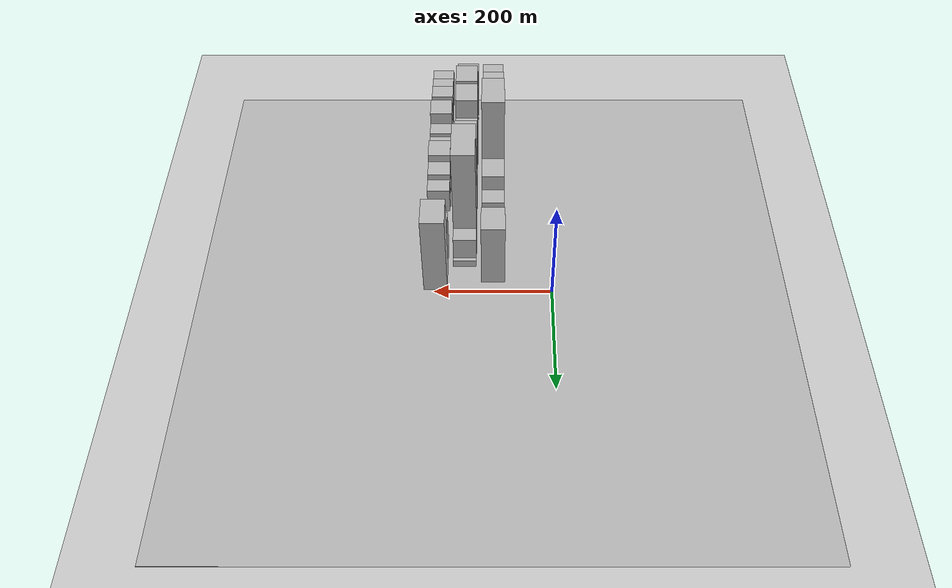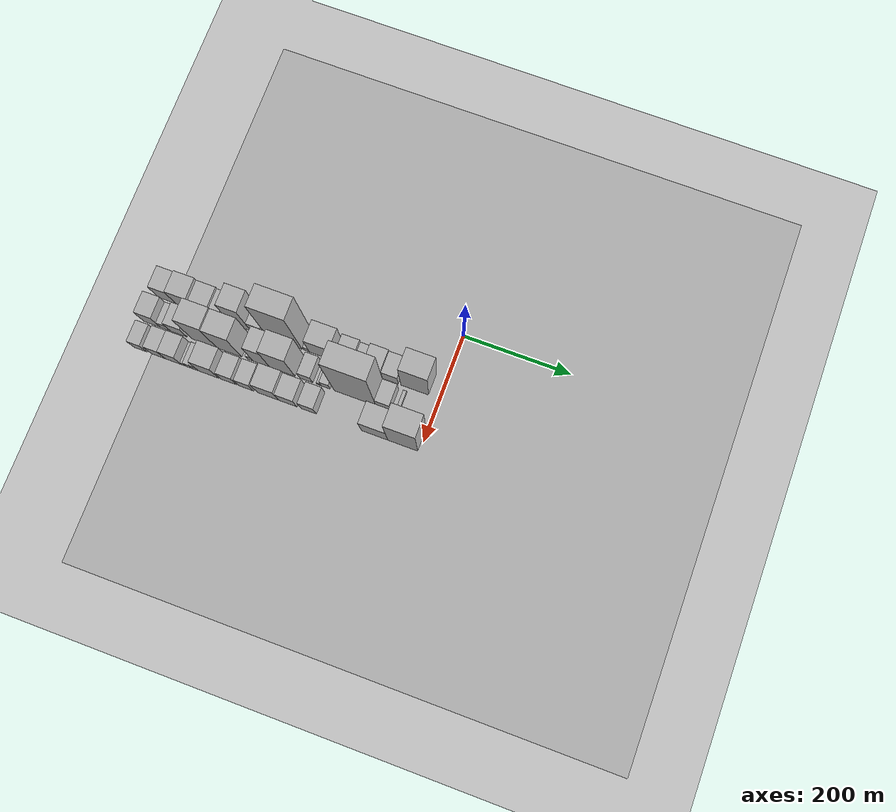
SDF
<sdf version="1.6">
 <world name="default">
  <include><name>ground_plane_1</name><uri>model://HANNAS_ground_plane</uri></include>
  <include>
   <name>ground_plane_2</name>
   <uri>model://HANNAS_ground_plane</uri>
   <pose>100 0 0  0 0 0</pose>
  </include>
  <model name="building_1">
   <static>1</static>
   <pose>100.0000 -513.3441 0 0.000000 0.000000 0.000000</pose>
   <link name="link">
    <pose>0 0 33.00 0 0 0</pose>
    <collision name="collision"><geometry><box><size>40.0000 33.3119 66.0000</size></box></geometry></collision>
    <visual name="visual">
     <cast_shadows>0</cast_shadows>
     <geometry><box><size>40.0000 33.3119 66.0000</size></box></geometry>
     <material>
      <script>
       <uri>model://HANNAS_wall/materials/scripts</uri>
       <uri>model://HANNAS_wall/materials/textures</uri>
       <name>vrc/HANNAS_wall</name>
      </script>
     </material>
    </visual>
   </link>
  </model>
  <model name="building_2">
   <static>1</static>
   <pose>100.0000 -477.1812 0 0.000000 0.000000 0.000000</pose>
   <link name="link">
    <pose>0 0 37.50 0 0 0</pose>
    <collision name="collision"><geometry><box><size>40.0000 39.0138 75.0000</size></box></geometry></collision>
    <visual name="visual">
     <cast_shadows>0</cast_shadows>
     <geometry><box><size>40.0000 39.0138 75.0000</size></box></geometry>
     <material>
      <script>
       <uri>model://HANNAS_wall/materials/scripts</uri>
       <uri>model://HANNAS_wall/materials/textures</uri>
       <name>vrc/HANNAS_wall</name>
      </script>
     </material>
    </visual>
   </link>
  </model>
  <model name="building_3">
   <static>1</static>
   <pose>100.0000 -439.6910 0 0.000000 0.000000 0.000000</pose>
   <link name="link">
    <pose>0 0 31.50 0 0 0</pose>
    <collision name="collision"><geometry><box><size>40.0000 35.9666 63.0000</size></box></geometry></collision>
    <visual name="visual">
     <cast_shadows>0</cast_shadows>
     <geometry><box><size>40.0000 35.9666 63.0000</size></box></geometry>
     <material>
      <script>
       <uri>model://HANNAS_wall/materials/scripts</uri>
       <uri>model://HANNAS_wall/materials/textures</uri>
       <name>vrc/HANNAS_wall</name>
      </script>
     </material>
    </visual>
   </link>
  </model>
  <model name="building_4">
   <static>1</static>
   <pose>100.0000 -406.5747 0 0.000000 0.000000 0.000000</pose>
   <link name="link">
    <pose>0 0 27.00 0 0 0</pose>
    <collision name="collision"><geometry><box><size>40.0000 30.2659 54.0000</size></box></geometry></collision>
    <visual name="visual">
     <cast_shadows>0</cast_shadows>
     <geometry><box><size>40.0000 30.2659 54.0000</size></box></geometry>
     <material>
      <script>
       <uri>model://HANNAS_wall/materials/scripts</uri>
       <uri>model://HANNAS_wall/materials/textures</uri>
       <name>vrc/HANNAS_wall</name>
      </script>
     </material>
    </visual>
   </link>
  </model>
  <model name="building_5">
   <static>1</static>
   <pose>100.0000 -372.5879 0 0.000000 0.000000 0.000000</pose>
   <link name="link">
    <pose>0 0 61.50 0 0 0</pose>
    <collision name="collision"><geometry><box><size>40.0000 37.7079 123.0000</size></box></geometry></collision>
    <visual name="visual">
     <cast_shadows>0</cast_shadows>
     <geometry><box><size>40.0000 37.7079 123.0000</size></box></geometry>
     <material>
      <script>
       <uri>model://HANNAS_wall/materials/scripts</uri>
       <uri>model://HANNAS_wall/materials/textures</uri>
       <name>vrc/HANNAS_wall</name>
      </script>
     </material>
    </visual>
   </link>
  </model>
  <model name="building_6">
   <static>1</static>
   <pose>100.0000 -340.1390 0 0.000000 0.000000 0.000000</pose>
   <link name="link">
    <pose>0 0 25.50 0 0 0</pose>
    <collision name="collision"><geometry><box><size>40.0000 27.1898 51.0000</size></box></geometry></collision>
    <visual name="visual">
     <cast_shadows>0</cast_shadows>
     <geometry><box><size>40.0000 27.1898 51.0000</size></box></geometry>
     <material>
      <script>
       <uri>model://HANNAS_wall/materials/scripts</uri>
       <uri>model://HANNAS_wall/materials/textures</uri>
       <name>vrc/HANNAS_wall</name>
      </script>
     </material>
    </visual>
   </link>
  </model>
  <model name="building_7">
   <static>1</static>
   <pose>100.0000 -288.8997 0 0.000000 0.000000 0.000000</pose>
   <link name="link">
    <pose>0 0 100.50 0 0 0</pose>
    <collision name="collision"><geometry><box><size>40.0000 65.2887 201.0000</size></box></geometry></collision>
    <visual name="visual">
     <cast_shadows>0</cast_shadows>
     <geometry><box><size>40.0000 65.2887 201.0000</size></box></geometry>
     <material>
      <script>
       <uri>model://HANNAS_wall/materials/scripts</uri>
       <uri>model://HANNAS_wall/materials/textures</uri>
       <name>vrc/HANNAS_wall</name>
      </script>
     </material>
    </visual>
   </link>
  </model>
  <model name="building_8">
   <static>1</static>
   <pose>100.0000 -248.1924 0 0.000000 0.000000 0.000000</pose>
   <link name="link">
    <pose>0 0 10.50 0 0 0</pose>
    <collision name="collision"><geometry><box><size>40.0000 10.1259 21.0000</size></box></geometry></collision>
    <visual name="visual">
     <cast_shadows>0</cast_shadows>
     <geometry><box><size>40.0000 10.1259 21.0000</size></box></geometry>
     <material>
      <script>
       <uri>model://HANNAS_wall/materials/scripts</uri>
       <uri>model://HANNAS_wall/materials/textures</uri>
       <name>vrc/HANNAS_wall</name>
      </script>
     </material>
    </visual>
   </link>
  </model>
  <model name="building_9">
   <static>1</static>
   <pose>100.0000 -220.3343 0 0.000000 0.000000 0.000000</pose>
   <link name="link">
    <pose>0 0 40.50 0 0 0</pose>
    <collision name="collision"><geometry><box><size>40.0000 45.5904 81.0000</size></box></geometry></collision>
    <visual name="visual">
     <cast_shadows>0</cast_shadows>
     <geometry><box><size>40.0000 45.5904 81.0000</size></box></geometry>
     <material>
      <script>
       <uri>model://HANNAS_wall/materials/scripts</uri>
       <uri>model://HANNAS_wall/materials/textures</uri>
       <name>vrc/HANNAS_wall</name>
      </script>
     </material>
    </visual>
   </link>
  </model>
  <model name="building_10">
   <static>1</static>
   <pose>100.0000 -175.4471 0 0.000000 0.000000 0.000000</pose>
   <link name="link">
    <pose>0 0 27.00 0 0 0</pose>
    <collision name="collision"><geometry><box><size>40.0000 32.1840 54.0000</size></box></geometry></collision>
    <visual name="visual">
     <cast_shadows>0</cast_shadows>
     <geometry><box><size>40.0000 32.1840 54.0000</size></box></geometry>
     <material>
      <script>
       <uri>model://HANNAS_wall/materials/scripts</uri>
       <uri>model://HANNAS_wall/materials/textures</uri>
       <name>vrc/HANNAS_wall</name>
      </script>
     </material>
    </visual>
   </link>
  </model>
  <model name="building_11">
   <static>1</static>
   <pose>100.0000 -149.4975 0 0.000000 0.000000 0.000000</pose>
   <link name="link">
    <pose>0 0 19.50 0 0 0</pose>
    <collision name="collision"><geometry><box><size>40.0000 19.7152 39.0000</size></box></geometry></collision>
    <visual name="visual">
     <cast_shadows>0</cast_shadows>
     <geometry><box><size>40.0000 19.7152 39.0000</size></box></geometry>
     <material>
      <script>
       <uri>model://HANNAS_wall/materials/scripts</uri>
       <uri>model://HANNAS_wall/materials/textures</uri>
       <name>vrc/HANNAS_wall</name>
      </script>
     </material>
    </visual>
   </link>
  </model>
  <model name="building_12">
   <static>1</static>
   <pose>100.0000 -122.9814 0 0.000000 0.000000 0.000000</pose>
   <link name="link">
    <pose>0 0 30.00 0 0 0</pose>
    <collision name="collision"><geometry><box><size>40.0000 33.3170 60.0000</size></box></geometry></collision>
    <visual name="visual">
     <cast_shadows>0</cast_shadows>
     <geometry><box><size>40.0000 33.3170 60.0000</size></box></geometry>
     <material>
      <script>
       <uri>model://HANNAS_wall/materials/scripts</uri>
       <uri>model://HANNAS_wall/materials/textures</uri>
       <name>vrc/HANNAS_wall</name>
      </script>
     </material>
    </visual>
   </link>
  </model>
  <model name="building_13">
   <static>1</static>
   <pose>100.0000 -91.6072 0 0.000000 0.000000 0.000000</pose>
   <link name="link">
    <pose>0 0 25.50 0 0 0</pose>
    <collision name="collision"><geometry><box><size>40.0000 29.4314 51.0000</size></box></geometry></collision>
    <visual name="visual">
     <cast_shadows>0</cast_shadows>
     <geometry><box><size>40.0000 29.4314 51.0000</size></box></geometry>
     <material>
      <script>
       <uri>model://HANNAS_wall/materials/scripts</uri>
       <uri>model://HANNAS_wall/materials/textures</uri>
       <name>vrc/HANNAS_wall</name>
      </script>
     </material>
    </visual>
   </link>
  </model>
  <model name="building_14">
   <static>1</static>
   <pose>100.0000 -46.2894 0 0.000000 0.000000 0.000000</pose>
   <link name="link">
    <pose>0 0 66.00 0 0 0</pose>
    <collision name="collision"><geometry><box><size>40.0000 51.2043 132.0000</size></box></geometry></collision>
    <visual name="visual">
     <cast_shadows>0</cast_shadows>
     <geometry><box><size>40.0000 51.2043 132.0000</size></box></geometry>
     <material>
      <script>
       <uri>model://HANNAS_wall/materials/scripts</uri>
       <uri>model://HANNAS_wall/materials/textures</uri>
       <name>vrc/HANNAS_wall</name>
      </script>
     </material>
    </visual>
   </link>
  </model>
  <model name="building_31">
   <static>1</static>
   <pose>149.0000 -520.1009 0 0.000000 0.000000 0.000000</pose>
   <link name="link">
    <pose>0 0 31.50 0 0 0</pose>
    <collision name="collision"><geometry><box><size>40.0000 31.7982 63.0000</size></box></geometry></collision>
    <visual name="visual">
     <cast_shadows>0</cast_shadows>
     <geometry><box><size>40.0000 31.7982 63.0000</size></box></geometry>
     <material>
      <script>
       <uri>model://HANNAS_wall/materials/scripts</uri>
       <uri>model://HANNAS_wall/materials/textures</uri>
       <name>vrc/HANNAS_wall</name>
      </script>
     </material>
    </visual>
   </link>
  </model>
  <model name="building_32">
   <static>1</static>
   <pose>149.0000 -494.9690 0 0.000000 0.000000 0.000000</pose>
   <link name="link">
    <pose>0 0 16.50 0 0 0</pose>
    <collision name="collision"><geometry><box><size>40.0000 18.4654 33.0000</size></box></geometry></collision>
    <visual name="visual">
     <cast_shadows>0</cast_shadows>
     <geometry><box><size>40.0000 18.4654 33.0000</size></box></geometry>
     <material>
      <script>
       <uri>model://HANNAS_wall/materials/scripts</uri>
       <uri>model://HANNAS_wall/materials/textures</uri>
       <name>vrc/HANNAS_wall</name>
      </script>
     </material>
    </visual>
   </link>
  </model>
  <model name="building_33">
   <static>1</static>
   <pose>149.0000 -469.7545 0 0.000000 0.000000 0.000000</pose>
   <link name="link">
    <pose>0 0 27.00 0 0 0</pose>
    <collision name="collision"><geometry><box><size>40.0000 31.9637 54.0000</size></box></geometry></collision>
    <visual name="visual">
     <cast_shadows>0</cast_shadows>
     <geometry><box><size>40.0000 31.9637 54.0000</size></box></geometry>
     <material>
      <script>
       <uri>model://HANNAS_wall/materials/scripts</uri>
       <uri>model://HANNAS_wall/materials/textures</uri>
       <name>vrc/HANNAS_wall</name>
      </script>
     </material>
    </visual>
   </link>
  </model>
  <model name="building_34">
   <static>1</static>
   <pose>149.0000 -420.1335 0 0.000000 0.000000 0.000000</pose>
   <link name="link">
    <pose>0 0 66.00 0 0 0</pose>
    <collision name="collision"><geometry><box><size>40.0000 47.2783 132.0000</size></box></geometry></collision>
    <visual name="visual">
     <cast_shadows>0</cast_shadows>
     <geometry><box><size>40.0000 47.2783 132.0000</size></box></geometry>
     <material>
      <script>
       <uri>model://HANNAS_wall/materials/scripts</uri>
       <uri>model://HANNAS_wall/materials/textures</uri>
       <name>vrc/HANNAS_wall</name>
      </script>
     </material>
    </visual>
   </link>
  </model>
  <model name="building_35">
   <static>1</static>
   <pose>149.0000 -373.2348 0 0.000000 0.000000 0.000000</pose>
   <link name="link">
    <pose>0 0 63.00 0 0 0</pose>
    <collision name="collision"><geometry><box><size>40.0000 46.5190 126.0000</size></box></geometry></collision>
    <visual name="visual">
     <cast_shadows>0</cast_shadows>
     <geometry><box><size>40.0000 46.5190 126.0000</size></box></geometry>
     <material>
      <script>
       <uri>model://HANNAS_wall/materials/scripts</uri>
       <uri>model://HANNAS_wall/materials/textures</uri>
       <name>vrc/HANNAS_wall</name>
      </script>
     </material>
    </visual>
   </link>
  </model>
  <model name="building_36">
   <static>1</static>
   <pose>149.0000 -334.3465 0 0.000000 0.000000 0.000000</pose>
   <link name="link">
    <pose>0 0 12.00 0 0 0</pose>
    <collision name="collision"><geometry><box><size>40.0000 11.2576 24.0000</size></box></geometry></collision>
    <visual name="visual">
     <cast_shadows>0</cast_shadows>
     <geometry><box><size>40.0000 11.2576 24.0000</size></box></geometry>
     <material>
      <script>
       <uri>model://HANNAS_wall/materials/scripts</uri>
       <uri>model://HANNAS_wall/materials/textures</uri>
       <name>vrc/HANNAS_wall</name>
      </script>
     </material>
    </visual>
   </link>
  </model>
  <model name="building_37">
   <static>1</static>
   <pose>149.0000 -313.2042 0 0.000000 0.000000 0.000000</pose>
   <link name="link">
    <pose>0 0 51.00 0 0 0</pose>
    <collision name="collision"><geometry><box><size>40.0000 31.0270 102.0000</size></box></geometry></collision>
    <visual name="visual">
     <cast_shadows>0</cast_shadows>
     <geometry><box><size>40.0000 31.0270 102.0000</size></box></geometry>
     <material>
      <script>
       <uri>model://HANNAS_wall/materials/scripts</uri>
       <uri>model://HANNAS_wall/materials/textures</uri>
       <name>vrc/HANNAS_wall</name>
      </script>
     </material>
    </visual>
   </link>
  </model>
  <model name="building_38">
   <static>1</static>
   <pose>149.0000 -273.9152 0 0.000000 0.000000 0.000000</pose>
   <link name="link">
    <pose>0 0 61.50 0 0 0</pose>
    <collision name="collision"><geometry><box><size>40.0000 47.5510 123.0000</size></box></geometry></collision>
    <visual name="visual">
     <cast_shadows>0</cast_shadows>
     <geometry><box><size>40.0000 47.5510 123.0000</size></box></geometry>
     <material>
      <script>
       <uri>model://HANNAS_wall/materials/scripts</uri>
       <uri>model://HANNAS_wall/materials/textures</uri>
       <name>vrc/HANNAS_wall</name>
      </script>
     </material>
    </visual>
   </link>
  </model>
  <model name="building_39">
   <static>1</static>
   <pose>149.0000 -229.0265 0 0.000000 0.000000 0.000000</pose>
   <link name="link">
    <pose>0 0 21.00 0 0 0</pose>
    <collision name="collision"><geometry><box><size>40.0000 24.2266 42.0000</size></box></geometry></collision>
    <visual name="visual">
     <cast_shadows>0</cast_shadows>
     <geometry><box><size>40.0000 24.2266 42.0000</size></box></geometry>
     <material>
      <script>
       <uri>model://HANNAS_wall/materials/scripts</uri>
       <uri>model://HANNAS_wall/materials/textures</uri>
       <name>vrc/HANNAS_wall</name>
      </script>
     </material>
    </visual>
   </link>
  </model>
  <model name="building_40">
   <static>1</static>
   <pose>149.0000 -205.2852 0 0.000000 0.000000 0.000000</pose>
   <link name="link">
    <pose>0 0 7.50 0 0 0</pose>
    <collision name="collision"><geometry><box><size>40.0000 7.2558 15.0000</size></box></geometry></collision>
    <visual name="visual">
     <cast_shadows>0</cast_shadows>
     <geometry><box><size>40.0000 7.2558 15.0000</size></box></geometry>
     <material>
      <script>
       <uri>model://HANNAS_wall/materials/scripts</uri>
       <uri>model://HANNAS_wall/materials/textures</uri>
       <name>vrc/HANNAS_wall</name>
      </script>
     </material>
    </visual>
   </link>
  </model>
  <model name="building_41">
   <static>1</static>
   <pose>149.0000 -193.0816 0 0.000000 0.000000 0.000000</pose>
   <link name="link">
    <pose>0 0 16.50 0 0 0</pose>
    <collision name="collision"><geometry><box><size>40.0000 17.1515 33.0000</size></box></geometry></collision>
    <visual name="visual">
     <cast_shadows>0</cast_shadows>
     <geometry><box><size>40.0000 17.1515 33.0000</size></box></geometry>
     <material>
      <script>
       <uri>model://HANNAS_wall/materials/scripts</uri>
       <uri>model://HANNAS_wall/materials/textures</uri>
       <name>vrc/HANNAS_wall</name>
      </script>
     </material>
    </visual>
   </link>
  </model>
  <model name="building_42">
   <static>1</static>
   <pose>149.0000 -138.0762 0 0.000000 0.000000 0.000000</pose>
   <link name="link">
    <pose>0 0 111.00 0 0 0</pose>
    <collision name="collision"><geometry><box><size>40.0000 76.8591 222.0000</size></box></geometry></collision>
    <visual name="visual">
     <cast_shadows>0</cast_shadows>
     <geometry><box><size>40.0000 76.8591 222.0000</size></box></geometry>
     <material>
      <script>
       <uri>model://HANNAS_wall/materials/scripts</uri>
       <uri>model://HANNAS_wall/materials/textures</uri>
       <name>vrc/HANNAS_wall</name>
      </script>
     </material>
    </visual>
   </link>
  </model>
  <model name="building_43">
   <static>1</static>
   <pose>149.0000 -86.1121 0 0.000000 0.000000 0.000000</pose>
   <link name="link">
    <pose>0 0 25.50 0 0 0</pose>
    <collision name="collision"><geometry><box><size>40.0000 27.0691 51.0000</size></box></geometry></collision>
    <visual name="visual">
     <cast_shadows>0</cast_shadows>
     <geometry><box><size>40.0000 27.0691 51.0000</size></box></geometry>
     <material>
      <script>
       <uri>model://HANNAS_wall/materials/scripts</uri>
       <uri>model://HANNAS_wall/materials/textures</uri>
       <name>vrc/HANNAS_wall</name>
      </script>
     </material>
    </visual>
   </link>
  </model>
  <model name="building_44">
   <static>1</static>
   <pose>149.0000 -60.4198 0 0.000000 0.000000 0.000000</pose>
   <link name="link">
    <pose>0 0 7.50 0 0 0</pose>
    <collision name="collision"><geometry><box><size>40.0000 6.3156 15.0000</size></box></geometry></collision>
    <visual name="visual">
     <cast_shadows>0</cast_shadows>
     <geometry><box><size>40.0000 6.3156 15.0000</size></box></geometry>
     <material>
      <script>
       <uri>model://HANNAS_wall/materials/scripts</uri>
       <uri>model://HANNAS_wall/materials/textures</uri>
       <name>vrc/HANNAS_wall</name>
      </script>
     </material>
    </visual>
   </link>
  </model>
  <model name="building_59">
   <static>1</static>
   <pose>198.0000 -520.8537 0 0.000000 0.000000 0.000000</pose>
   <link name="link">
    <pose>0 0 24.00 0 0 0</pose>
    <collision name="collision"><geometry><box><size>40.0000 24.2926 48.0000</size></box></geometry></collision>
    <visual name="visual">
     <cast_shadows>0</cast_shadows>
     <geometry><box><size>40.0000 24.2926 48.0000</size></box></geometry>
     <material>
      <script>
       <uri>model://HANNAS_wall/materials/scripts</uri>
       <uri>model://HANNAS_wall/materials/textures</uri>
       <name>vrc/HANNAS_wall</name>
      </script>
     </material>
    </visual>
   </link>
  </model>
  <model name="building_60">
   <static>1</static>
   <pose>198.0000 -487.1367 0 0.000000 0.000000 0.000000</pose>
   <link name="link">
    <pose>0 0 27.00 0 0 0</pose>
    <collision name="collision"><geometry><box><size>40.0000 27.1415 54.0000</size></box></geometry></collision>
    <visual name="visual">
     <cast_shadows>0</cast_shadows>
     <geometry><box><size>40.0000 27.1415 54.0000</size></box></geometry>
     <material>
      <script>
       <uri>model://HANNAS_wall/materials/scripts</uri>
       <uri>model://HANNAS_wall/materials/textures</uri>
       <name>vrc/HANNAS_wall</name>
      </script>
     </material>
    </visual>
   </link>
  </model>
  <model name="building_61">
   <static>1</static>
   <pose>198.0000 -458.1198 0 0.000000 0.000000 0.000000</pose>
   <link name="link">
    <pose>0 0 28.50 0 0 0</pose>
    <collision name="collision"><geometry><box><size>40.0000 30.8923 57.0000</size></box></geometry></collision>
    <visual name="visual">
     <cast_shadows>0</cast_shadows>
     <geometry><box><size>40.0000 30.8923 57.0000</size></box></geometry>
     <material>
      <script>
       <uri>model://HANNAS_wall/materials/scripts</uri>
       <uri>model://HANNAS_wall/materials/textures</uri>
       <name>vrc/HANNAS_wall</name>
      </script>
     </material>
    </visual>
   </link>
  </model>
  <model name="building_62">
   <static>1</static>
   <pose>198.0000 -439.0229 0 0.000000 0.000000 0.000000</pose>
   <link name="link">
    <pose>0 0 9.00 0 0 0</pose>
    <collision name="collision"><geometry><box><size>40.0000 7.3014 18.0000</size></box></geometry></collision>
    <visual name="visual">
     <cast_shadows>0</cast_shadows>
     <geometry><box><size>40.0000 7.3014 18.0000</size></box></geometry>
     <material>
      <script>
       <uri>model://HANNAS_wall/materials/scripts</uri>
       <uri>model://HANNAS_wall/materials/textures</uri>
       <name>vrc/HANNAS_wall</name>
      </script>
     </material>
    </visual>
   </link>
  </model>
  <model name="building_63">
   <static>1</static>
   <pose>198.0000 -429.1786 0 0.000000 0.000000 0.000000</pose>
   <link name="link">
    <pose>0 0 13.50 0 0 0</pose>
    <collision name="collision"><geometry><box><size>40.0000 12.3873 27.0000</size></box></geometry></collision>
    <visual name="visual">
     <cast_shadows>0</cast_shadows>
     <geometry><box><size>40.0000 12.3873 27.0000</size></box></geometry>
     <material>
      <script>
       <uri>model://HANNAS_wall/materials/scripts</uri>
       <uri>model://HANNAS_wall/materials/textures</uri>
       <name>vrc/HANNAS_wall</name>
      </script>
     </material>
    </visual>
   </link>
  </model>
  <model name="building_64">
   <static>1</static>
   <pose>198.0000 -417.1598 0 0.000000 0.000000 0.000000</pose>
   <link name="link">
    <pose>0 0 13.50 0 0 0</pose>
    <collision name="collision"><geometry><box><size>40.0000 11.6503 27.0000</size></box></geometry></collision>
    <visual name="visual">
     <cast_shadows>0</cast_shadows>
     <geometry><box><size>40.0000 11.6503 27.0000</size></box></geometry>
     <material>
      <script>
       <uri>model://HANNAS_wall/materials/scripts</uri>
       <uri>model://HANNAS_wall/materials/textures</uri>
       <name>vrc/HANNAS_wall</name>
      </script>
     </material>
    </visual>
   </link>
  </model>
  <model name="building_65">
   <static>1</static>
   <pose>198.0000 -391.9674 0 0.000000 0.000000 0.000000</pose>
   <link name="link">
    <pose>0 0 37.50 0 0 0</pose>
    <collision name="collision"><geometry><box><size>40.0000 38.7346 75.0000</size></box></geometry></collision>
    <visual name="visual">
     <cast_shadows>0</cast_shadows>
     <geometry><box><size>40.0000 38.7346 75.0000</size></box></geometry>
     <material>
      <script>
       <uri>model://HANNAS_wall/materials/scripts</uri>
       <uri>model://HANNAS_wall/materials/textures</uri>
       <name>vrc/HANNAS_wall</name>
      </script>
     </material>
    </visual>
   </link>
  </model>
  <model name="building_66">
   <static>1</static>
   <pose>198.0000 -353.9172 0 0.000000 0.000000 0.000000</pose>
   <link name="link">
    <pose>0 0 27.00 0 0 0</pose>
    <collision name="collision"><geometry><box><size>40.0000 29.3658 54.0000</size></box></geometry></collision>
    <visual name="visual">
     <cast_shadows>0</cast_shadows>
     <geometry><box><size>40.0000 29.3658 54.0000</size></box></geometry>
     <material>
      <script>
       <uri>model://HANNAS_wall/materials/scripts</uri>
       <uri>model://HANNAS_wall/materials/textures</uri>
       <name>vrc/HANNAS_wall</name>
      </script>
     </material>
    </visual>
   </link>
  </model>
  <model name="building_67">
   <static>1</static>
   <pose>198.0000 -321.4491 0 0.000000 0.000000 0.000000</pose>
   <link name="link">
    <pose>0 0 25.50 0 0 0</pose>
    <collision name="collision"><geometry><box><size>40.0000 27.5703 51.0000</size></box></geometry></collision>
    <visual name="visual">
     <cast_shadows>0</cast_shadows>
     <geometry><box><size>40.0000 27.5703 51.0000</size></box></geometry>
     <material>
      <script>
       <uri>model://HANNAS_wall/materials/scripts</uri>
       <uri>model://HANNAS_wall/materials/textures</uri>
       <name>vrc/HANNAS_wall</name>
      </script>
     </material>
    </visual>
   </link>
  </model>
  <model name="building_68">
   <static>1</static>
   <pose>198.0000 -280.5245 0 0.000000 0.000000 0.000000</pose>
   <link name="link">
    <pose>0 0 36.00 0 0 0</pose>
    <collision name="collision"><geometry><box><size>40.0000 40.2789 72.0000</size></box></geometry></collision>
    <visual name="visual">
     <cast_shadows>0</cast_shadows>
     <geometry><box><size>40.0000 40.2789 72.0000</size></box></geometry>
     <material>
      <script>
       <uri>model://HANNAS_wall/materials/scripts</uri>
       <uri>model://HANNAS_wall/materials/textures</uri>
       <name>vrc/HANNAS_wall</name>
      </script>
     </material>
    </visual>
   </link>
  </model>
  <model name="building_69">
   <static>1</static>
   <pose>198.0000 -243.4772 0 0.000000 0.000000 0.000000</pose>
   <link name="link">
    <pose>0 0 28.50 0 0 0</pose>
    <collision name="collision"><geometry><box><size>40.0000 33.8158 57.0000</size></box></geometry></collision>
    <visual name="visual">
     <cast_shadows>0</cast_shadows>
     <geometry><box><size>40.0000 33.8158 57.0000</size></box></geometry>
     <material>
      <script>
       <uri>model://HANNAS_wall/materials/scripts</uri>
       <uri>model://HANNAS_wall/materials/textures</uri>
       <name>vrc/HANNAS_wall</name>
      </script>
     </material>
    </visual>
   </link>
  </model>
  <model name="building_70">
   <static>1</static>
   <pose>198.0000 -205.1557 0 0.000000 0.000000 0.000000</pose>
   <link name="link">
    <pose>0 0 25.50 0 0 0</pose>
    <collision name="collision"><geometry><box><size>40.0000 28.8272 51.0000</size></box></geometry></collision>
    <visual name="visual">
     <cast_shadows>0</cast_shadows>
     <geometry><box><size>40.0000 28.8272 51.0000</size></box></geometry>
     <material>
      <script>
       <uri>model://HANNAS_wall/materials/scripts</uri>
       <uri>model://HANNAS_wall/materials/textures</uri>
       <name>vrc/HANNAS_wall</name>
      </script>
     </material>
    </visual>
   </link>
  </model>
  <model name="building_71">
   <static>1</static>
   <pose>198.0000 -82.9867 0 0.000000 0.000000 0.000000</pose>
   <link name="link">
    <pose>0 0 42.00 0 0 0</pose>
    <collision name="collision"><geometry><box><size>40.0000 48.5036 84.0000</size></box></geometry></collision>
    <visual name="visual">
     <cast_shadows>0</cast_shadows>
     <geometry><box><size>40.0000 48.5036 84.0000</size></box></geometry>
     <material>
      <script>
       <uri>model://HANNAS_wall/materials/scripts</uri>
       <uri>model://HANNAS_wall/materials/textures</uri>
       <name>vrc/HANNAS_wall</name>
      </script>
     </material>
    </visual>
   </link>
  </model>
  <model name="building_72">
   <static>1</static>
   <pose>198.0000 -31.3602 0 0.000000 0.000000 0.000000</pose>
   <link name="link">
    <pose>0 0 82.50 0 0 0</pose>
    <collision name="collision"><geometry><box><size>40.0000 54.7495 165.0000</size></box></geometry></collision>
    <visual name="visual">
     <cast_shadows>0</cast_shadows>
     <geometry><box><size>40.0000 54.7495 165.0000</size></box></geometry>
     <material>
      <script>
       <uri>model://HANNAS_wall/materials/scripts</uri>
       <uri>model://HANNAS_wall/materials/textures</uri>
       <name>vrc/HANNAS_wall</name>
      </script>
     </material>
    </visual>
   </link>
  </model>
 </world>
</sdf>
